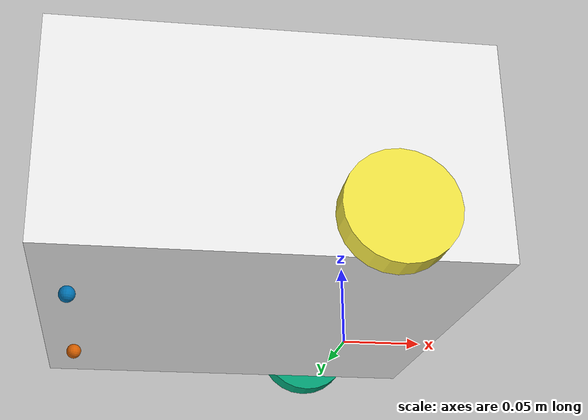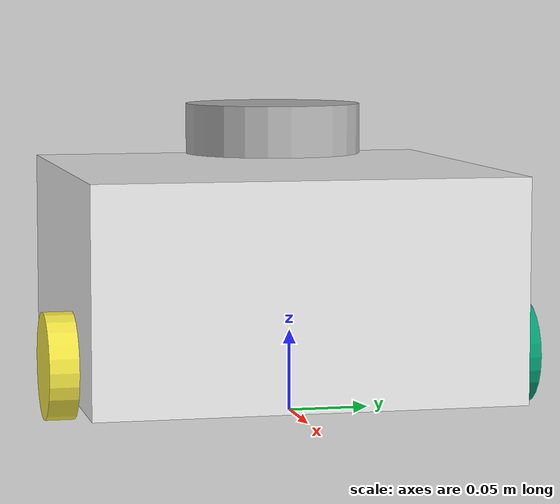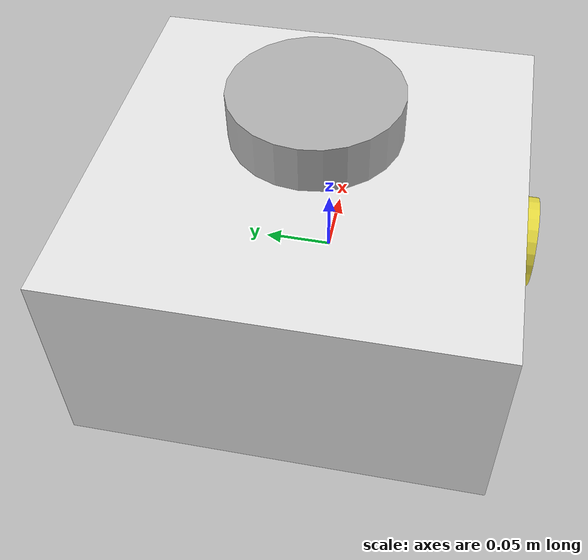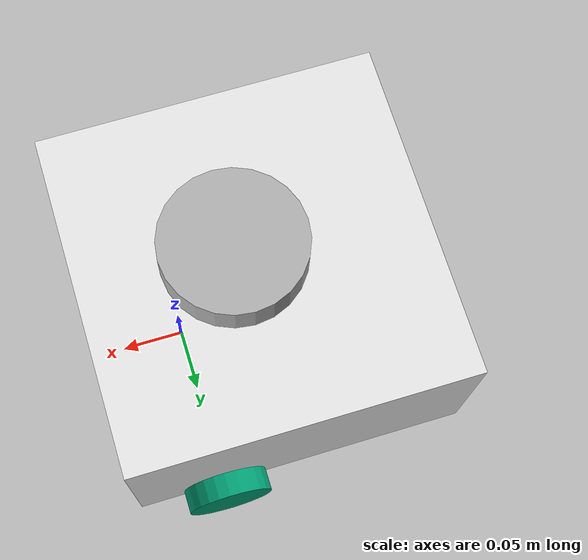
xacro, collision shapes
<?xml version="1.0"?>
<robot name="shelter" xmlns:xacro="https://github.com/TeamLIDARKorea/shelter.git">
  <xacro:include filename="$(find pkg_test)/urdf/common_properties.xacro"/>
  <xacro:include filename="$(find pkg_test)/urdf/shelter.gazebo.xacro"/>

  <link name="base_footprint"/>

  <joint name="base_joint" type="fixed">
    <parent link="base_footprint"/>
    <child link="base_link" />
    <origin xyz="0 0 0.010" rpy="0 0 0"/>
  </joint>

  <link name="base_link">
    <visual>
      <origin xyz="-0.064 0 0.009" rpy="0 0 0"/>
      <geometry>
        <mesh filename="package://pkg_test/mesh/shelter_base.stl" scale="0.001 0.001 0.001"/>
      </geometry>
      <material name="white"/>
    </visual>

    <collision>
      <origin xyz="-0.064 0 0.0685" rpy="0 0 0"/>
      <geometry>
        <box size="0.266 0.266 0.1385"/>
      </geometry>
    </collision>

    <inertial>
      <origin xyz="0 0 0" rpy="0 0 0"/>
      <mass value="1.3729096e+00"/>
      <inertia ixx="8.7002718e-03" ixy="-4.7576583e-05" ixz="1.1160499e-04"
               iyy="8.6195418e-03" iyz="-3.5422299e-06"
               izz="1.4612727e-02" />
    </inertial>
  </link>

  <joint name="wheel_left_joint" type="continuous">
    <parent link="base_link"/>
    <child link="wheel_left_link"/>
    <origin xyz="0.0 0.144 0.0225" rpy="-1.57 0 0"/>
    <axis xyz="0 0 1"/>
  </joint>

  <link name="wheel_left_link">
    <visual>
      <origin xyz="0 0 0" rpy="1.57 0 0"/>
      <geometry>
        <mesh filename="package://pkg_test/mesh/left_tire.stl" scale="0.001 0.001 0.001"/>
      </geometry>
      <material name="dark"/>
    </visual>

    <collision>
      <origin xyz="0 0 0" rpy="0 0 0"/>
      <geometry>
        <cylinder length="0.018" radius="0.033"/>
      </geometry>
    </collision>

    <inertial>
      <origin xyz="0 0 0" />
      <mass value="2.8498940e-02" />
      <inertia ixx="1.1175580e-05" ixy="-4.2369783e-11" ixz="-5.9381719e-09"
               iyy="1.1192413e-05" iyz="-1.4400107e-11"
               izz="2.0712558e-05" />
      </inertial>
  </link>

  <joint name="wheel_right_joint" type="continuous">
    <parent link="base_link"/>
    <child link="wheel_right_link"/>
    <origin xyz="0.0 -0.144 0.0225" rpy="-1.57 0 0"/>
    <axis xyz="0 0 1"/>
  </joint>

  <link name="wheel_right_link">
    <visual>
      <origin xyz="0 0 0" rpy="1.57 0 0"/>
      <geometry>
        <mesh filename="package://pkg_test/mesh/right_tire.stl" scale="0.001 0.001 0.001"/>
      </geometry>
      <material name="dark"/>
    </visual>

    <collision>
      <origin xyz="0 0 0" rpy="0 0 0"/>
      <geometry>
        <cylinder length="0.018" radius="0.033"/>
      </geometry>
    </collision>

    <inertial>
      <origin xyz="0 0 0" />
      <mass value="2.8498940e-02" />
      <inertia ixx="1.1175580e-05" ixy="-4.2369783e-11" ixz="-5.9381719e-09"
               iyy="1.1192413e-05" iyz="-1.4400107e-11"
               izz="2.0712558e-05" />
      </inertial>
  </link>

  <joint name="caster_back_right_joint" type="fixed">
    <parent link="base_link"/>
    <child link="caster_back_right_link"/>
    <origin xyz="-0.177 -0.064 0" rpy="0 0 0"/>
  </joint>

  <link name="caster_back_right_link">
    <collision>
      <origin xyz="0 0.001 -0.005" rpy="0 0 0"/>
      <geometry>
        <sphere radius="0.005"/>
      </geometry>
    </collision>

    <inertial>
      <origin xyz="0 0 0" />
      <mass value="0.005" />
      <inertia ixx="0.001" ixy="0.0" ixz="0.0"
               iyy="0.001" iyz="0.0"
               izz="0.001" />
    </inertial>
  </link>

  <joint name="caster_back_left_joint" type="fixed">
    <parent link="base_link"/>
    <child link="caster_back_left_link"/>
    <origin xyz="-0.177 0.064 -0.000" rpy="0 0 0"/>
  </joint>

  <link name="caster_back_left_link">
    <collision>
      <origin xyz="0 0.001 -0.005" rpy="0 0 0"/>
      <geometry>
        <sphere radius="0.005"/>
      </geometry>
    </collision>

    <inertial>
      <origin xyz="0 0 0" />
      <mass value="0.005" />
      <inertia ixx="0.001" ixy="0.0" ixz="0.0"
               iyy="0.001" iyz="0.0"
               izz="0.001" />
    </inertial>
  </link>

  <joint name="imu_joint" type="fixed">
    <parent link="base_link"/>
    <child link="imu_link"/>
    <origin xyz="0.0 0 0.087" rpy="0 0 0"/>
  </joint>

  <link name="imu_link"/>

  <joint name="scan_joint" type="fixed">
    <parent link="base_link"/>
    <child link="base_scan"/>
    <origin xyz="-0.064 0 0.169" rpy="0 0 0"/>
  </joint>

  <link name="base_scan">
    <visual>
      <origin xyz="0 0 0" rpy="0 0 0"/>
      <geometry>
        <mesh filename="package://pkg_test/mesh/lds.stl" scale="0.001 0.001 0.001"/>
      </geometry>
      <material name="dark"/>
    </visual>

    <collision>
      <origin xyz="0.015 0 -0.0065" rpy="0 0 0"/>
      <geometry>
        <cylinder length="0.0315" radius="0.055"/>
      </geometry>
    </collision>

    <inertial>
      <mass value="0.114" />
      <origin xyz="0 0 0" />
      <inertia ixx="0.001" ixy="0.0" ixz="0.0"
               iyy="0.001" iyz="0.0"
               izz="0.001" />
    </inertial>
  </link>
</robot>
